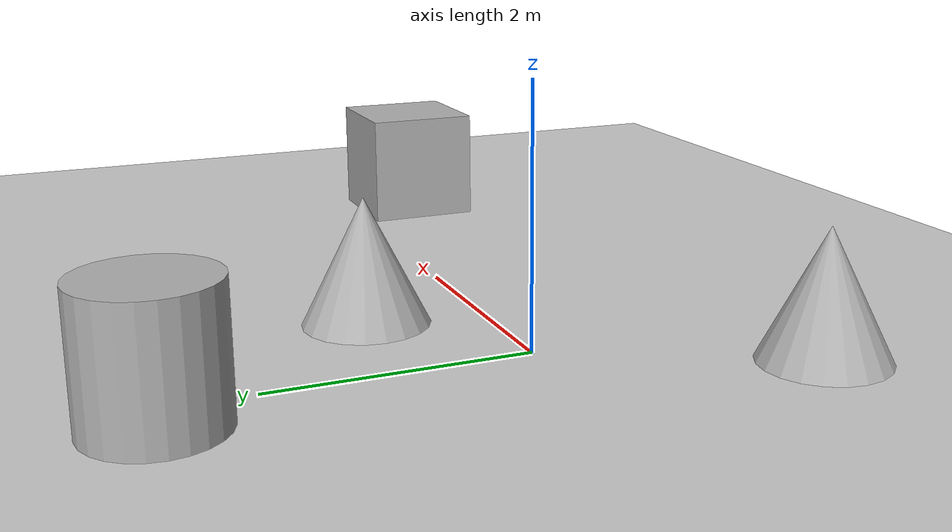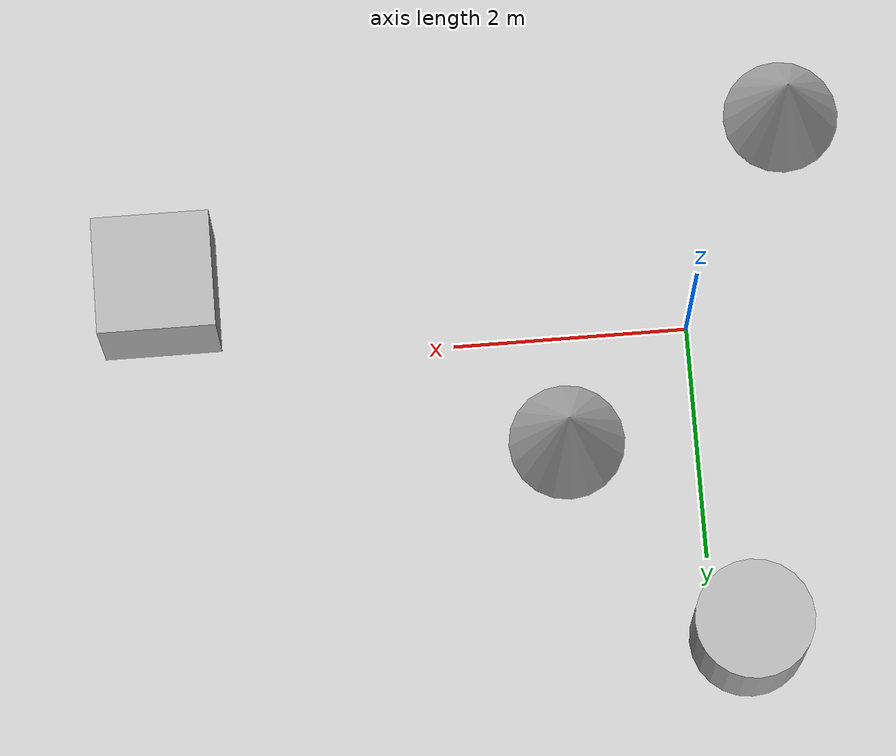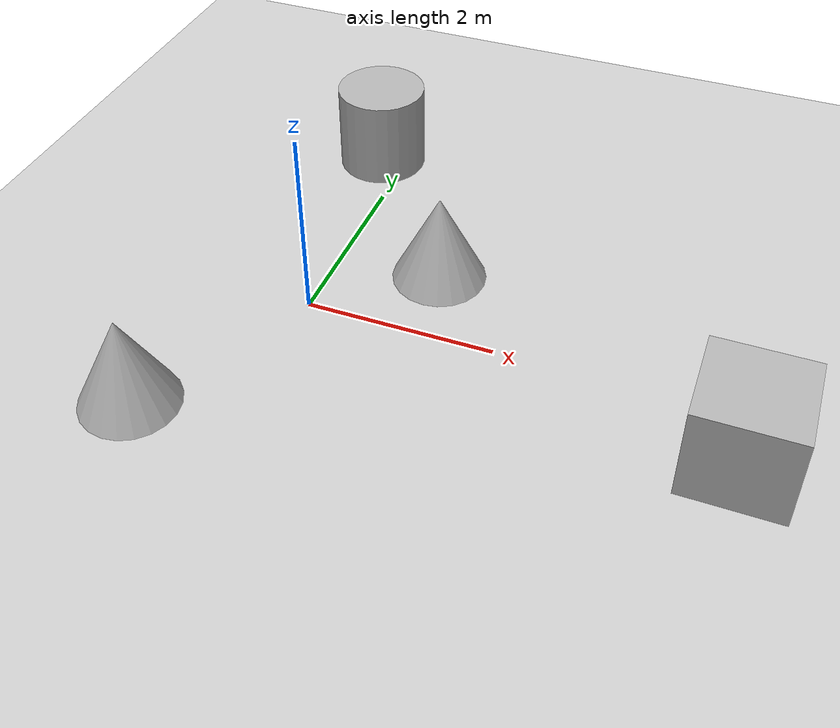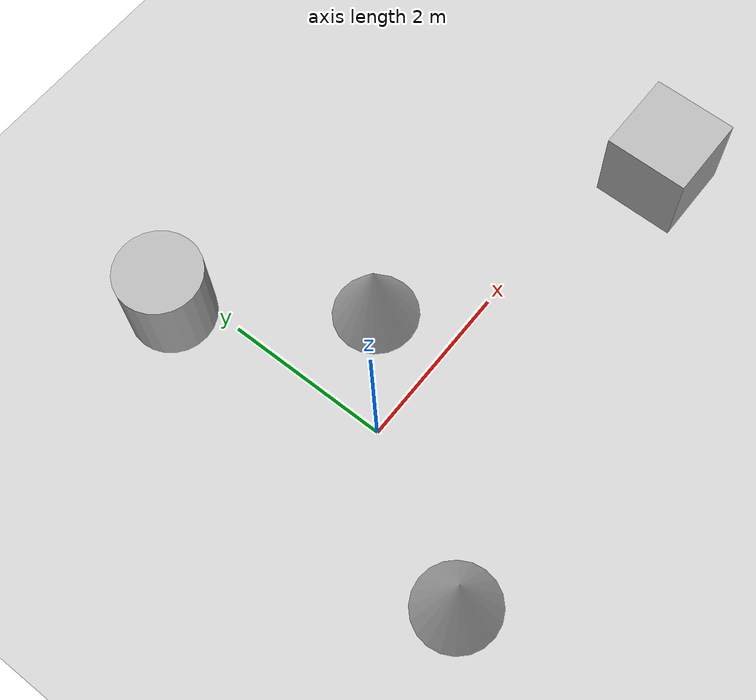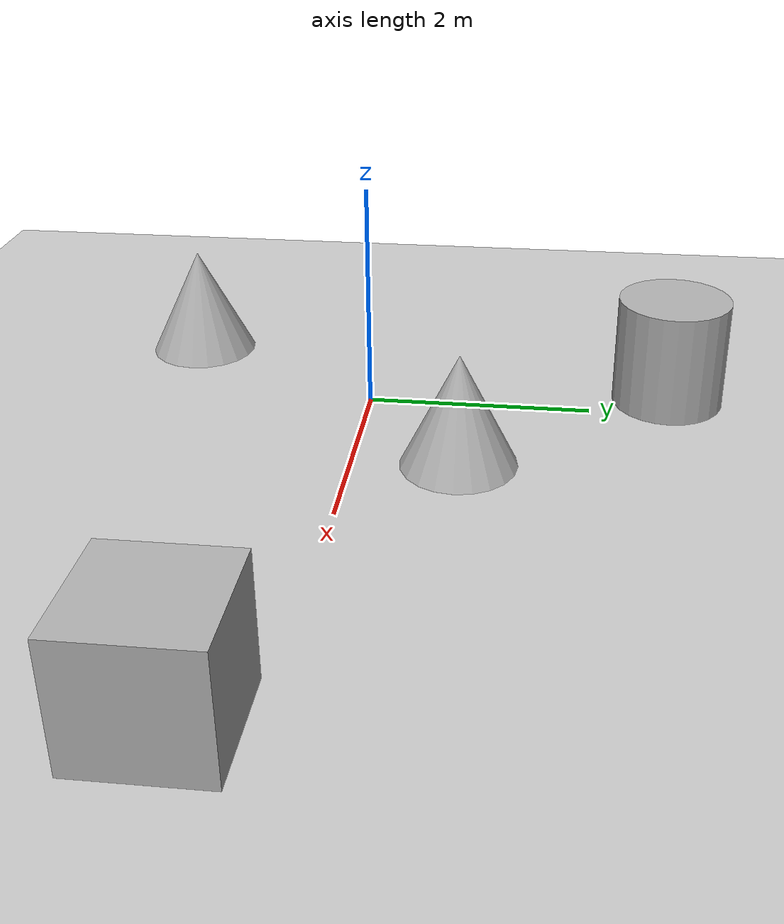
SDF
<sdf version='1.10'>
  <world name='empty'>
    <physics name='1ms' type='ignored'>
      <max_step_size>0.001</max_step_size>
      <real_time_factor>1</real_time_factor>
      <real_time_update_rate>1000</real_time_update_rate>
    </physics>
    <plugin name='gz::sim::systems::Physics' filename='gz-sim-physics-system'/>
    <plugin name='gz::sim::systems::UserCommands' filename='gz-sim-user-commands-system'/>
    <plugin name='gz::sim::systems::SceneBroadcaster' filename='gz-sim-scene-broadcaster-system'/>
    <plugin name='gz::sim::systems::Contact' filename='gz-sim-contact-system'/>
    <gravity>0 0 -9.8000000000000007</gravity>
    <magnetic_field>5.5644999999999998e-06 2.2875799999999999e-05 -4.2388400000000002e-05</magnetic_field>
    <atmosphere type='adiabatic'/>
    <scene>
      <ambient>0.400000006 0.400000006 0.400000006 1</ambient>
      <background>0.699999988 0.699999988 0.699999988 1</background>
      <shadows>true</shadows>
    </scene>
    <model name='ground_plane'>
      <static>true</static>
      <link name='link'>
        <collision name='collision'>
          <geometry>
            <plane>
              <normal>0 0 1</normal>
              <size>100 100</size>
            </plane>
          </geometry>
          <surface>
            <friction>
              <ode/>
            </friction>
            <bounce/>
            <contact/>
          </surface>
        </collision>
        <visual name='visual'>
          <geometry>
            <plane>
              <normal>0 0 1</normal>
              <size>100 100</size>
            </plane>
          </geometry>
          <material>
            <ambient>0.800000012 0.800000012 0.800000012 1</ambient>
            <diffuse>0.800000012 0.800000012 0.800000012 1</diffuse>
            <specular>0.800000012 0.800000012 0.800000012 1</specular>
          </material>
        </visual>
        <pose>0 0 0 0 0 0</pose>
        <inertial>
          <pose>0 0 0 0 0 0</pose>
          <mass>1</mass>
          <inertia>
            <ixx>1</ixx>
            <ixy>0</ixy>
            <ixz>0</ixz>
            <iyy>1</iyy>
            <iyz>0</iyz>
            <izz>1</izz>
          </inertia>
        </inertial>
        <enable_wind>false</enable_wind>
      </link>
      <pose>0 0 0 0 0 0</pose>
      <self_collide>false</self_collide>
    </model>
    <model name='cone'>
      <pose>1.1018037912936176 0.90579196068991008 0.49999999993296756 5.254931119316858e-17 -7.7132841033999823e-10 6.969765996526587e-23</pose>
      <link name='cone_link'>
        <inertial>
          <inertia>
            <ixx>0.074999999999999997</ixx>
            <ixy>0</ixy>
            <ixz>0</ixz>
            <iyy>0.074999999999999997</iyy>
            <iyz>0</iyz>
            <izz>0.074999999999999997</izz>
          </inertia>
          <mass>1</mass>
          <pose>0 0 0 0 0 0</pose>
        </inertial>
        <collision name='cone_collision'>
          <geometry>
            <cone>
              <radius>0.5</radius>
              <length>1</length>
            </cone>
          </geometry>
          <surface>
            <friction>
              <ode/>
            </friction>
            <bounce/>
            <contact/>
          </surface>
        </collision>
        <visual name='cone_visual'>
          <geometry>
            <cone>
              <radius>0.5</radius>
              <length>1</length>
            </cone>
          </geometry>
          <material>
            <ambient>0.300000012 0.300000012 0.300000012 1</ambient>
            <diffuse>0.699999988 0.699999988 0.699999988 1</diffuse>
            <specular>1 1 1 1</specular>
          </material>
        </visual>
        <pose>0 0 0 0 0 0</pose>
        <enable_wind>false</enable_wind>
      </link>
      <static>false</static>
      <self_collide>false</self_collide>
    </model>
    <model name='cone_0'>
      <pose>-0.98678514597582967 -1.8386155789211651 0.49999999993296756 5.2548181070375607e-17 -7.7132841035387636e-10 1.1957697606687262e-23</pose>
      <link name='cone_link'>
        <inertial>
          <inertia>
            <ixx>0.074999999999999997</ixx>
            <ixy>0</ixy>
            <ixz>0</ixz>
            <iyy>0.074999999999999997</iyy>
            <iyz>0</iyz>
            <izz>0.074999999999999997</izz>
          </inertia>
          <mass>1</mass>
          <pose>0 0 0 0 0 0</pose>
        </inertial>
        <collision name='cone_collision'>
          <geometry>
            <cone>
              <radius>0.5</radius>
              <length>1</length>
            </cone>
          </geometry>
          <surface>
            <friction>
              <ode/>
            </friction>
            <bounce/>
            <contact/>
          </surface>
        </collision>
        <visual name='cone_visual'>
          <geometry>
            <cone>
              <radius>0.5</radius>
              <length>1</length>
            </cone>
          </geometry>
          <material>
            <ambient>0.300000012 0.300000012 0.300000012 1</ambient>
            <diffuse>0.699999988 0.699999988 0.699999988 1</diffuse>
            <specular>1 1 1 1</specular>
          </material>
        </visual>
        <pose>0 0 0 0 0 0</pose>
        <enable_wind>false</enable_wind>
      </link>
      <static>false</static>
      <self_collide>false</self_collide>
    </model>
    <model name='box'>
      <pose>4.4946709382236696 -0.61561772071215293 0.49999999990199806 6.2287739151293738e-22 9.3279666454713669e-22 -3.6315533669320137e-22</pose>
      <link name='box_link'>
        <inertial>
          <inertia>
            <ixx>0.16666</ixx>
            <ixy>0</ixy>
            <ixz>0</ixz>
            <iyy>0.16666</iyy>
            <iyz>0</iyz>
            <izz>0.16666</izz>
          </inertia>
          <mass>1</mass>
          <pose>0 0 0 0 0 0</pose>
        </inertial>
        <collision name='box_collision'>
          <geometry>
            <box>
              <size>1 1 1</size>
            </box>
          </geometry>
          <surface>
            <friction>
              <ode/>
            </friction>
            <bounce/>
            <contact/>
          </surface>
        </collision>
        <visual name='box_visual'>
          <geometry>
            <box>
              <size>1 1 1</size>
            </box>
          </geometry>
          <material>
            <ambient>0.300000012 0.300000012 0.300000012 1</ambient>
            <diffuse>0.699999988 0.699999988 0.699999988 1</diffuse>
            <specular>1 1 1 1</specular>
          </material>
        </visual>
        <pose>0 0 0 0 0 0</pose>
        <enable_wind>false</enable_wind>
      </link>
      <static>false</static>
      <self_collide>false</self_collide>
    </model>
    <model name='cylinder'>
      <pose>-0.29165141452198018 2.7136149840808623 0.49999942638036005 3.8739272982778538e-19 6.9523823392439735e-20 8.2402123992575769e-21</pose>
      <link name='cylinder_link'>
        <inertial>
          <inertia>
            <ixx>0.14580000000000001</ixx>
            <ixy>0</ixy>
            <ixz>0</ixz>
            <iyy>0.14580000000000001</iyy>
            <iyz>0</iyz>
            <izz>0.125</izz>
          </inertia>
          <mass>1</mass>
          <pose>0 0 0 0 0 0</pose>
        </inertial>
        <collision name='cylinder_collision'>
          <geometry>
            <cylinder>
              <radius>0.5</radius>
              <length>1</length>
            </cylinder>
          </geometry>
          <surface>
            <friction>
              <ode/>
            </friction>
            <bounce/>
            <contact/>
          </surface>
        </collision>
        <visual name='cylinder_visual'>
          <geometry>
            <cylinder>
              <radius>0.5</radius>
              <length>1</length>
            </cylinder>
          </geometry>
          <material>
            <ambient>0.300000012 0.300000012 0.300000012 1</ambient>
            <diffuse>0.699999988 0.699999988 0.699999988 1</diffuse>
            <specular>1 1 1 1</specular>
          </material>
        </visual>
        <pose>0 0 0 0 0 0</pose>
        <enable_wind>false</enable_wind>
      </link>
      <static>false</static>
      <self_collide>false</self_collide>
    </model>
    <light name='sun' type='directional'>
      <pose>0 0 10 0 0 0</pose>
      <cast_shadows>true</cast_shadows>
      <intensity>1</intensity>
      <direction>-0.5 0.10000000000000001 -0.90000000000000002</direction>
      <diffuse>0.800000012 0.800000012 0.800000012 1</diffuse>
      <specular>0.200000003 0.200000003 0.200000003 1</specular>
      <attenuation>
        <range>1000</range>
        <linear>0.01</linear>
        <constant>0.90000000000000002</constant>
        <quadratic>0.001</quadratic>
      </attenuation>
      <spot>
        <inner_angle>0</inner_angle>
        <outer_angle>0</outer_angle>
        <falloff>0</falloff>
      </spot>
    </light>
  </world>
</sdf>
